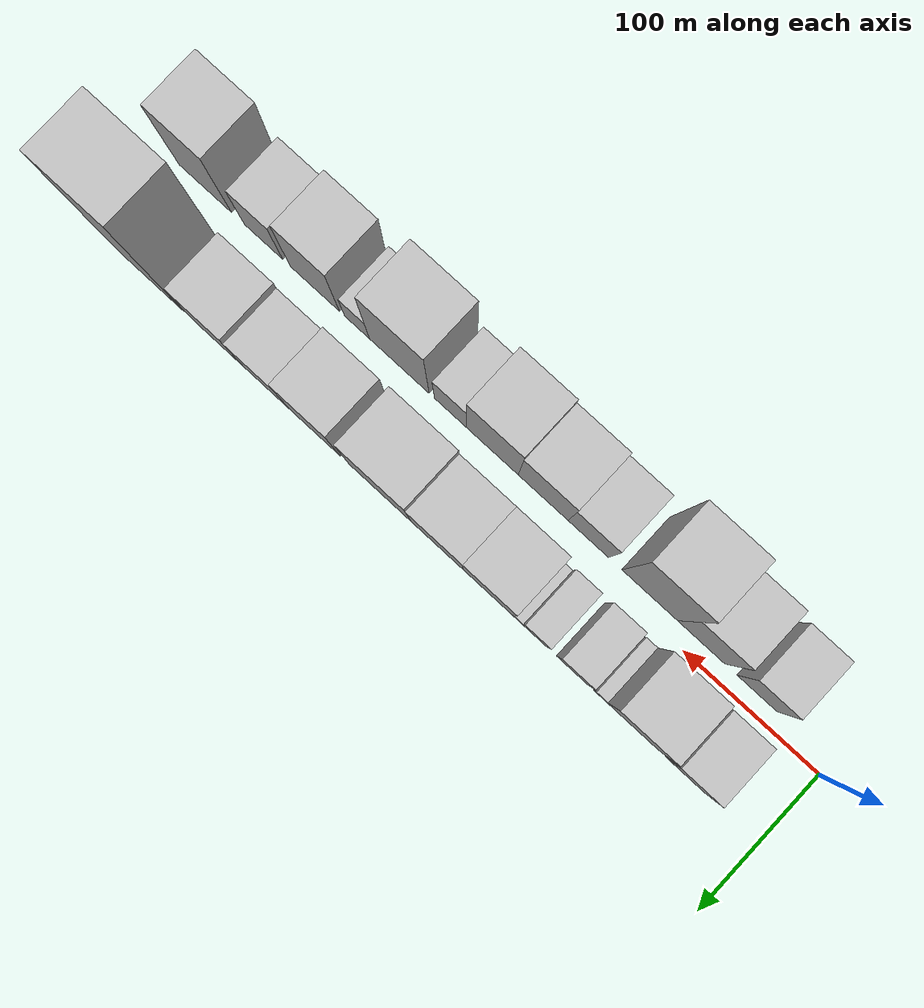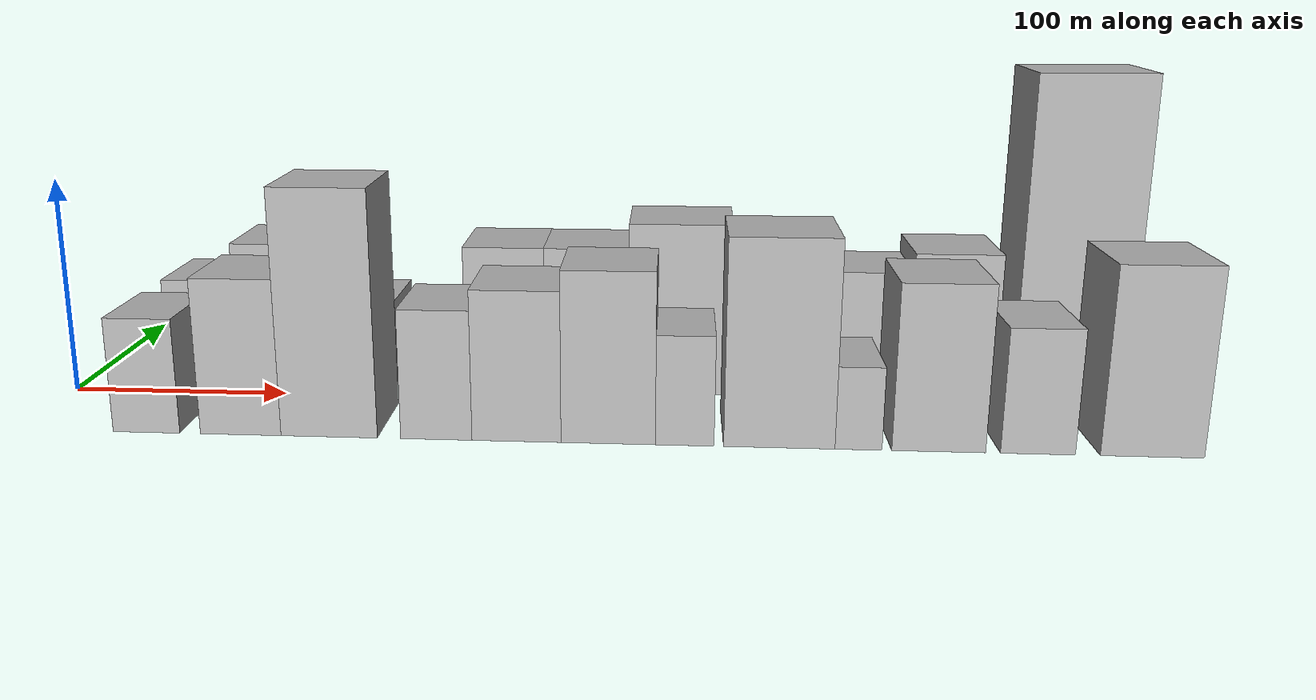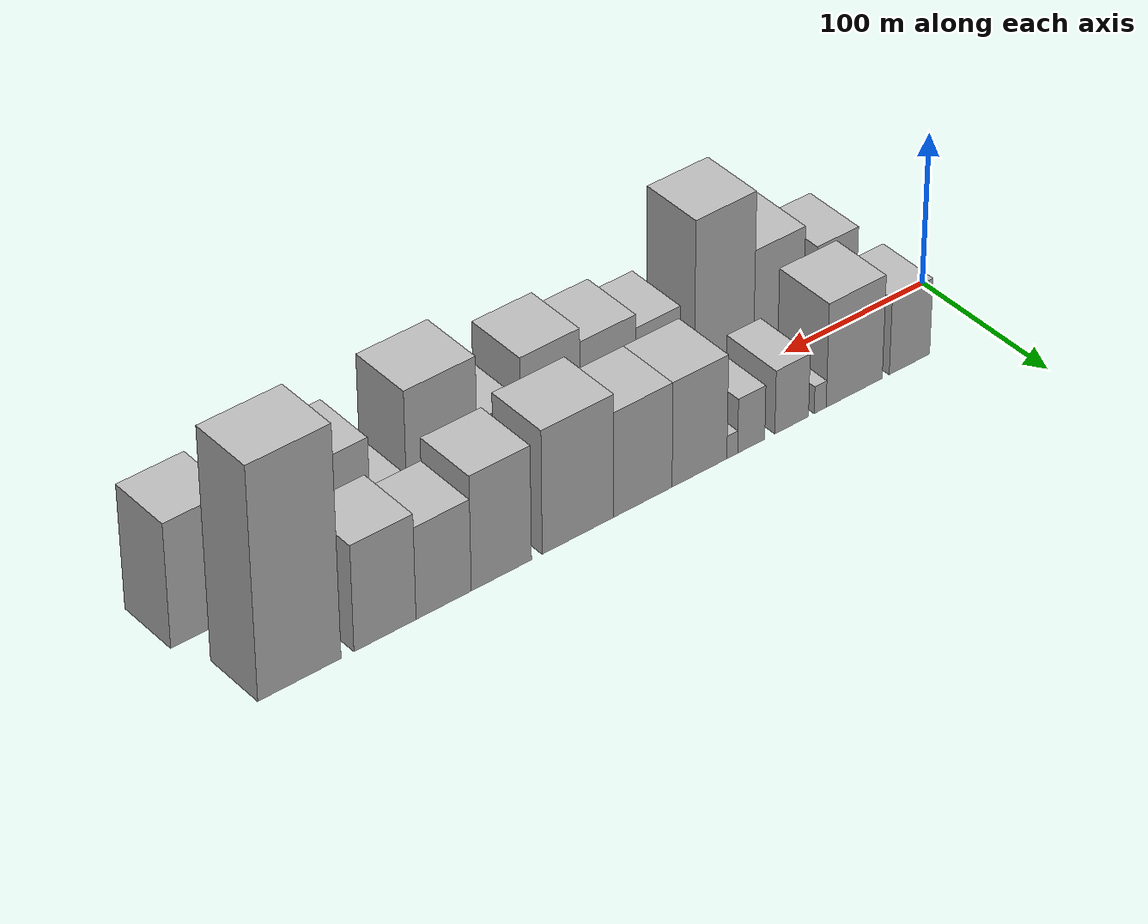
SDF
<sdf version="1.6">
 <world name="default">
  <scene>
   <sky><clouds><speed>12</speed></clouds></sky>
   <ambient>0.4 0.4 0.4 1</ambient>
   <background>0.7 0.7 0.7 1</background>
   <shadows>1</shadows>
  </scene>
  <gravity>0 0 -9.8066</gravity>
  <magnetic_field>6e-06 2.3e-05 -4.2e-05</magnetic_field>
  <physics default="0" name="default_physics" type="ode">
   <ode>
    <solver>
     <type>quick</type>
     <iters>10</iters>
     <sor>1.0</sor>
     <use_dynamic_moi_rescaling>0</use_dynamic_moi_rescaling>
    </solver>
    <constraints>
     <cfm>0</cfm>
     <erp>0.2</erp>
     <contact_max_correcting_vel>100</contact_max_correcting_vel>
     <contact_surface_layer>0.001</contact_surface_layer>
    </constraints>
   </ode>
   <max_step_size>0.004</max_step_size>
   <real_time_factor>1</real_time_factor>
   <real_time_update_rate>250</real_time_update_rate>
  </physics>
  <light name="sun" type="directional">
   <pose>0 0 10 0 0 0</pose>
   <diffuse>0.8 0.8 0.8 1</diffuse>
   <specular>0.2 0.2 0.2 1</specular>
   <attenuation>
    <range>1000</range>
    <constant>0.9</constant>
    <linear>0.01</linear>
    <quadratic>0.001</quadratic>
   </attenuation>
   <direction>-0.5 0.1 -0.9</direction>
  </light>
  <model name="building_1">
   <static>1</static>
   <pose>54.5127 30.0000 0 0.000000 0.000000 1.570796</pose>
   <link name="link">
    <pose>0 0 25.50 0 0 0</pose>
    <collision name="collision"><geometry><box><size>40.0000 29.0255 51.0000</size></box></geometry></collision>
    <visual name="visual">
     <cast_shadows>0</cast_shadows>
     <geometry><box><size>40.0000 29.0255 51.0000</size></box></geometry>
     <material>
      <script>
       <uri>model://HANNAS_wall/materials/scripts</uri>
       <uri>model://HANNAS_wall/materials/textures</uri>
       <name>vrc/HANNAS_wall</name>
      </script>
     </material>
    </visual>
   </link>
  </model>
  <model name="building_2">
   <static>1</static>
   <pose>93.9410 30.0000 0 0.000000 0.000000 1.570796</pose>
   <link name="link">
    <pose>0 0 34.50 0 0 0</pose>
    <collision name="collision"><geometry><box><size>40.0000 39.8310 69.0000</size></box></geometry></collision>
    <visual name="visual">
     <cast_shadows>0</cast_shadows>
     <geometry><box><size>40.0000 39.8310 69.0000</size></box></geometry>
     <material>
      <script>
       <uri>model://HANNAS_wall/materials/scripts</uri>
       <uri>model://HANNAS_wall/materials/textures</uri>
       <name>vrc/HANNAS_wall</name>
      </script>
     </material>
    </visual>
   </link>
  </model>
  <model name="building_3">
   <static>1</static>
   <pose>118.0509 30.0000 0 0.000000 0.000000 1.570796</pose>
   <link name="link">
    <pose>0 0 9.00 0 0 0</pose>
    <collision name="collision"><geometry><box><size>40.0000 8.3888 18.0000</size></box></geometry></collision>
    <visual name="visual">
     <cast_shadows>0</cast_shadows>
     <geometry><box><size>40.0000 8.3888 18.0000</size></box></geometry>
     <material>
      <script>
       <uri>model://HANNAS_wall/materials/scripts</uri>
       <uri>model://HANNAS_wall/materials/textures</uri>
       <name>vrc/HANNAS_wall</name>
      </script>
     </material>
    </visual>
   </link>
  </model>
  <model name="building_4">
   <static>1</static>
   <pose>138.0037 30.0000 0 0.000000 0.000000 1.570796</pose>
   <link name="link">
    <pose>0 0 21.00 0 0 0</pose>
    <collision name="collision"><geometry><box><size>40.0000 23.5168 42.0000</size></box></geometry></collision>
    <visual name="visual">
     <cast_shadows>0</cast_shadows>
     <geometry><box><size>40.0000 23.5168 42.0000</size></box></geometry>
     <material>
      <script>
       <uri>model://HANNAS_wall/materials/scripts</uri>
       <uri>model://HANNAS_wall/materials/textures</uri>
       <name>vrc/HANNAS_wall</name>
      </script>
     </material>
    </visual>
   </link>
  </model>
  <model name="building_5">
   <static>1</static>
   <pose>166.1332 30.0000 0 0.000000 0.000000 1.570796</pose>
   <link name="link">
    <pose>0 0 18.00 0 0 0</pose>
    <collision name="collision"><geometry><box><size>40.0000 18.7422 36.0000</size></box></geometry></collision>
    <visual name="visual">
     <cast_shadows>0</cast_shadows>
     <geometry><box><size>40.0000 18.7422 36.0000</size></box></geometry>
     <material>
      <script>
       <uri>model://HANNAS_wall/materials/scripts</uri>
       <uri>model://HANNAS_wall/materials/textures</uri>
       <name>vrc/HANNAS_wall</name>
      </script>
     </material>
    </visual>
   </link>
  </model>
  <model name="building_6">
   <static>1</static>
   <pose>179.1891 30.0000 0 0.000000 0.000000 1.570796</pose>
   <link name="link">
    <pose>0 0 7.50 0 0 0</pose>
    <collision name="collision"><geometry><box><size>40.0000 7.3696 15.0000</size></box></geometry></collision>
    <visual name="visual">
     <cast_shadows>0</cast_shadows>
     <geometry><box><size>40.0000 7.3696 15.0000</size></box></geometry>
     <material>
      <script>
       <uri>model://HANNAS_wall/materials/scripts</uri>
       <uri>model://HANNAS_wall/materials/textures</uri>
       <name>vrc/HANNAS_wall</name>
      </script>
     </material>
    </visual>
   </link>
  </model>
  <model name="building_7">
   <static>1</static>
   <pose>201.5711 30.0000 0 0.000000 0.000000 1.570796</pose>
   <link name="link">
    <pose>0 0 34.50 0 0 0</pose>
    <collision name="collision"><geometry><box><size>40.0000 37.3944 69.0000</size></box></geometry></collision>
    <visual name="visual">
     <cast_shadows>0</cast_shadows>
     <geometry><box><size>40.0000 37.3944 69.0000</size></box></geometry>
     <material>
      <script>
       <uri>model://HANNAS_wall/materials/scripts</uri>
       <uri>model://HANNAS_wall/materials/textures</uri>
       <name>vrc/HANNAS_wall</name>
      </script>
     </material>
    </visual>
   </link>
  </model>
  <model name="building_8">
   <static>1</static>
   <pose>239.8766 30.0000 0 0.000000 0.000000 1.570796</pose>
   <link name="link">
    <pose>0 0 34.50 0 0 0</pose>
    <collision name="collision"><geometry><box><size>40.0000 39.2166 69.0000</size></box></geometry></collision>
    <visual name="visual">
     <cast_shadows>0</cast_shadows>
     <geometry><box><size>40.0000 39.2166 69.0000</size></box></geometry>
     <material>
      <script>
       <uri>model://HANNAS_wall/materials/scripts</uri>
       <uri>model://HANNAS_wall/materials/textures</uri>
       <name>vrc/HANNAS_wall</name>
      </script>
     </material>
    </visual>
   </link>
  </model>
  <model name="building_9">
   <static>1</static>
   <pose>283.1481 30.0000 0 0.000000 0.000000 1.570796</pose>
   <link name="link">
    <pose>0 0 40.50 0 0 0</pose>
    <collision name="collision"><geometry><box><size>40.0000 47.3264 81.0000</size></box></geometry></collision>
    <visual name="visual">
     <cast_shadows>0</cast_shadows>
     <geometry><box><size>40.0000 47.3264 81.0000</size></box></geometry>
     <material>
      <script>
       <uri>model://HANNAS_wall/materials/scripts</uri>
       <uri>model://HANNAS_wall/materials/textures</uri>
       <name>vrc/HANNAS_wall</name>
      </script>
     </material>
    </visual>
   </link>
  </model>
  <model name="building_10">
   <static>1</static>
   <pose>333.3350 30.0000 0 0.000000 0.000000 1.570796</pose>
   <link name="link">
    <pose>0 0 37.50 0 0 0</pose>
    <collision name="collision"><geometry><box><size>40.0000 39.0474 75.0000</size></box></geometry></collision>
    <visual name="visual">
     <cast_shadows>0</cast_shadows>
     <geometry><box><size>40.0000 39.0474 75.0000</size></box></geometry>
     <material>
      <script>
       <uri>model://HANNAS_wall/materials/scripts</uri>
       <uri>model://HANNAS_wall/materials/textures</uri>
       <name>vrc/HANNAS_wall</name>
      </script>
     </material>
    </visual>
   </link>
  </model>
  <model name="building_11">
   <static>1</static>
   <pose>370.5648 30.0000 0 0.000000 0.000000 1.570796</pose>
   <link name="link">
    <pose>0 0 30.00 0 0 0</pose>
    <collision name="collision"><geometry><box><size>40.0000 35.4122 60.0000</size></box></geometry></collision>
    <visual name="visual">
     <cast_shadows>0</cast_shadows>
     <geometry><box><size>40.0000 35.4122 60.0000</size></box></geometry>
     <material>
      <script>
       <uri>model://HANNAS_wall/materials/scripts</uri>
       <uri>model://HANNAS_wall/materials/textures</uri>
       <name>vrc/HANNAS_wall</name>
      </script>
     </material>
    </visual>
   </link>
  </model>
  <model name="building_12">
   <static>1</static>
   <pose>407.8676 30.0000 0 0.000000 0.000000 1.570796</pose>
   <link name="link">
    <pose>0 0 34.50 0 0 0</pose>
    <collision name="collision"><geometry><box><size>40.0000 39.1934 69.0000</size></box></geometry></collision>
    <visual name="visual">
     <cast_shadows>0</cast_shadows>
     <geometry><box><size>40.0000 39.1934 69.0000</size></box></geometry>
     <material>
      <script>
       <uri>model://HANNAS_wall/materials/scripts</uri>
       <uri>model://HANNAS_wall/materials/textures</uri>
       <name>vrc/HANNAS_wall</name>
      </script>
     </material>
    </visual>
   </link>
  </model>
  <model name="building_13">
   <static>1</static>
   <pose>461.2493 30.0000 0 0.000000 0.000000 1.570796</pose>
   <link name="link">
    <pose>0 0 75.00 0 0 0</pose>
    <collision name="collision"><geometry><box><size>40.0000 51.5702 150.0000</size></box></geometry></collision>
    <visual name="visual">
     <cast_shadows>0</cast_shadows>
     <geometry><box><size>40.0000 51.5702 150.0000</size></box></geometry>
     <material>
      <script>
       <uri>model://HANNAS_wall/materials/scripts</uri>
       <uri>model://HANNAS_wall/materials/textures</uri>
       <name>vrc/HANNAS_wall</name>
      </script>
     </material>
    </visual>
   </link>
  </model>
  <model name="building_14">
   <static>1</static>
   <pose>54.6709 -30.0000 0 0.000000 0.000000 1.570796</pose>
   <link name="link">
    <pose>0 0 25.50 0 0 0</pose>
    <collision name="collision"><geometry><box><size>40.0000 29.3418 51.0000</size></box></geometry></collision>
    <visual name="visual">
     <cast_shadows>0</cast_shadows>
     <geometry><box><size>40.0000 29.3418 51.0000</size></box></geometry>
     <material>
      <script>
       <uri>model://HANNAS_wall/materials/scripts</uri>
       <uri>model://HANNAS_wall/materials/textures</uri>
       <name>vrc/HANNAS_wall</name>
      </script>
     </material>
    </visual>
   </link>
  </model>
  <model name="building_15">
   <static>1</static>
   <pose>95.9269 -30.0000 0 0.000000 0.000000 1.570796</pose>
   <link name="link">
    <pose>0 0 34.50 0 0 0</pose>
    <collision name="collision"><geometry><box><size>40.0000 35.1702 69.0000</size></box></geometry></collision>
    <visual name="visual">
     <cast_shadows>0</cast_shadows>
     <geometry><box><size>40.0000 35.1702 69.0000</size></box></geometry>
     <material>
      <script>
       <uri>model://HANNAS_wall/materials/scripts</uri>
       <uri>model://HANNAS_wall/materials/textures</uri>
       <name>vrc/HANNAS_wall</name>
      </script>
     </material>
    </visual>
   </link>
  </model>
  <model name="building_16">
   <static>1</static>
   <pose>134.3522 -30.0000 0 0.000000 0.000000 1.570796</pose>
   <link name="link">
    <pose>0 0 54.00 0 0 0</pose>
    <collision name="collision"><geometry><box><size>40.0000 41.6802 108.0000</size></box></geometry></collision>
    <visual name="visual">
     <cast_shadows>0</cast_shadows>
     <geometry><box><size>40.0000 41.6802 108.0000</size></box></geometry>
     <material>
      <script>
       <uri>model://HANNAS_wall/materials/scripts</uri>
       <uri>model://HANNAS_wall/materials/textures</uri>
       <name>vrc/HANNAS_wall</name>
      </script>
     </material>
    </visual>
   </link>
  </model>
  <model name="building_17">
   <static>1</static>
   <pose>180.4474 -30.0000 0 0.000000 0.000000 1.570796</pose>
   <link name="link">
    <pose>0 0 28.50 0 0 0</pose>
    <collision name="collision"><geometry><box><size>40.0000 30.5102 57.0000</size></box></geometry></collision>
    <visual name="visual">
     <cast_shadows>0</cast_shadows>
     <geometry><box><size>40.0000 30.5102 57.0000</size></box></geometry>
     <material>
      <script>
       <uri>model://HANNAS_wall/materials/scripts</uri>
       <uri>model://HANNAS_wall/materials/textures</uri>
       <name>vrc/HANNAS_wall</name>
      </script>
     </material>
    </visual>
   </link>
  </model>
  <model name="building_18">
   <static>1</static>
   <pose>214.5947 -30.0000 0 0.000000 0.000000 1.570796</pose>
   <link name="link">
    <pose>0 0 33.00 0 0 0</pose>
    <collision name="collision"><geometry><box><size>40.0000 37.7846 66.0000</size></box></geometry></collision>
    <visual name="visual">
     <cast_shadows>0</cast_shadows>
     <geometry><box><size>40.0000 37.7846 66.0000</size></box></geometry>
     <material>
      <script>
       <uri>model://HANNAS_wall/materials/scripts</uri>
       <uri>model://HANNAS_wall/materials/textures</uri>
       <name>vrc/HANNAS_wall</name>
      </script>
     </material>
    </visual>
   </link>
  </model>
  <model name="building_19">
   <static>1</static>
   <pose>253.3127 -30.0000 0 0.000000 0.000000 1.570796</pose>
   <link name="link">
    <pose>0 0 37.50 0 0 0</pose>
    <collision name="collision"><geometry><box><size>40.0000 39.6514 75.0000</size></box></geometry></collision>
    <visual name="visual">
     <cast_shadows>0</cast_shadows>
     <geometry><box><size>40.0000 39.6514 75.0000</size></box></geometry>
     <material>
      <script>
       <uri>model://HANNAS_wall/materials/scripts</uri>
       <uri>model://HANNAS_wall/materials/textures</uri>
       <name>vrc/HANNAS_wall</name>
      </script>
     </material>
    </visual>
   </link>
  </model>
  <model name="building_20">
   <static>1</static>
   <pose>285.4028 -30.0000 0 0.000000 0.000000 1.570796</pose>
   <link name="link">
    <pose>0 0 24.00 0 0 0</pose>
    <collision name="collision"><geometry><box><size>40.0000 24.5287 48.0000</size></box></geometry></collision>
    <visual name="visual">
     <cast_shadows>0</cast_shadows>
     <geometry><box><size>40.0000 24.5287 48.0000</size></box></geometry>
     <material>
      <script>
       <uri>model://HANNAS_wall/materials/scripts</uri>
       <uri>model://HANNAS_wall/materials/textures</uri>
       <name>vrc/HANNAS_wall</name>
      </script>
     </material>
    </visual>
   </link>
  </model>
  <model name="building_21">
   <static>1</static>
   <pose>324.7157 -30.0000 0 0.000000 0.000000 1.570796</pose>
   <link name="link">
    <pose>0 0 45.00 0 0 0</pose>
    <collision name="collision"><geometry><box><size>40.0000 46.0971 90.0000</size></box></geometry></collision>
    <visual name="visual">
     <cast_shadows>0</cast_shadows>
     <geometry><box><size>40.0000 46.0971 90.0000</size></box></geometry>
     <material>
      <script>
       <uri>model://HANNAS_wall/materials/scripts</uri>
       <uri>model://HANNAS_wall/materials/textures</uri>
       <name>vrc/HANNAS_wall</name>
      </script>
     </material>
    </visual>
   </link>
  </model>
  <model name="building_22">
   <static>1</static>
   <pose>357.4211 -30.0000 0 0.000000 0.000000 1.570796</pose>
   <link name="link">
    <pose>0 0 18.00 0 0 0</pose>
    <collision name="collision"><geometry><box><size>40.0000 19.3138 36.0000</size></box></geometry></collision>
    <visual name="visual">
     <cast_shadows>0</cast_shadows>
     <geometry><box><size>40.0000 19.3138 36.0000</size></box></geometry>
     <material>
      <script>
       <uri>model://HANNAS_wall/materials/scripts</uri>
       <uri>model://HANNAS_wall/materials/textures</uri>
       <name>vrc/HANNAS_wall</name>
      </script>
     </material>
    </visual>
   </link>
  </model>
  <model name="building_23">
   <static>1</static>
   <pose>390.2126 -30.0000 0 0.000000 0.000000 1.570796</pose>
   <link name="link">
    <pose>0 0 36.00 0 0 0</pose>
    <collision name="collision"><geometry><box><size>40.0000 38.2691 72.0000</size></box></geometry></collision>
    <visual name="visual">
     <cast_shadows>0</cast_shadows>
     <geometry><box><size>40.0000 38.2691 72.0000</size></box></geometry>
     <material>
      <script>
       <uri>model://HANNAS_wall/materials/scripts</uri>
       <uri>model://HANNAS_wall/materials/textures</uri>
       <name>vrc/HANNAS_wall</name>
      </script>
     </material>
    </visual>
   </link>
  </model>
  <model name="building_24">
   <static>1</static>
   <pose>430.4906 -30.0000 0 0.000000 0.000000 1.570796</pose>
   <link name="link">
    <pose>0 0 27.00 0 0 0</pose>
    <collision name="collision"><geometry><box><size>40.0000 30.2871 54.0000</size></box></geometry></collision>
    <visual name="visual">
     <cast_shadows>0</cast_shadows>
     <geometry><box><size>40.0000 30.2871 54.0000</size></box></geometry>
     <material>
      <script>
       <uri>model://HANNAS_wall/materials/scripts</uri>
       <uri>model://HANNAS_wall/materials/textures</uri>
       <name>vrc/HANNAS_wall</name>
      </script>
     </material>
    </visual>
   </link>
  </model>
  <model name="building_25">
   <static>1</static>
   <pose>476.4465 -30.0000 0 0.000000 0.000000 1.570796</pose>
   <link name="link">
    <pose>0 0 40.50 0 0 0</pose>
    <collision name="collision"><geometry><box><size>40.0000 41.6246 81.0000</size></box></geometry></collision>
    <visual name="visual">
     <cast_shadows>0</cast_shadows>
     <geometry><box><size>40.0000 41.6246 81.0000</size></box></geometry>
     <material>
      <script>
       <uri>model://HANNAS_wall/materials/scripts</uri>
       <uri>model://HANNAS_wall/materials/textures</uri>
       <name>vrc/HANNAS_wall</name>
      </script>
     </material>
    </visual>
   </link>
  </model>
 </world>
</sdf>
